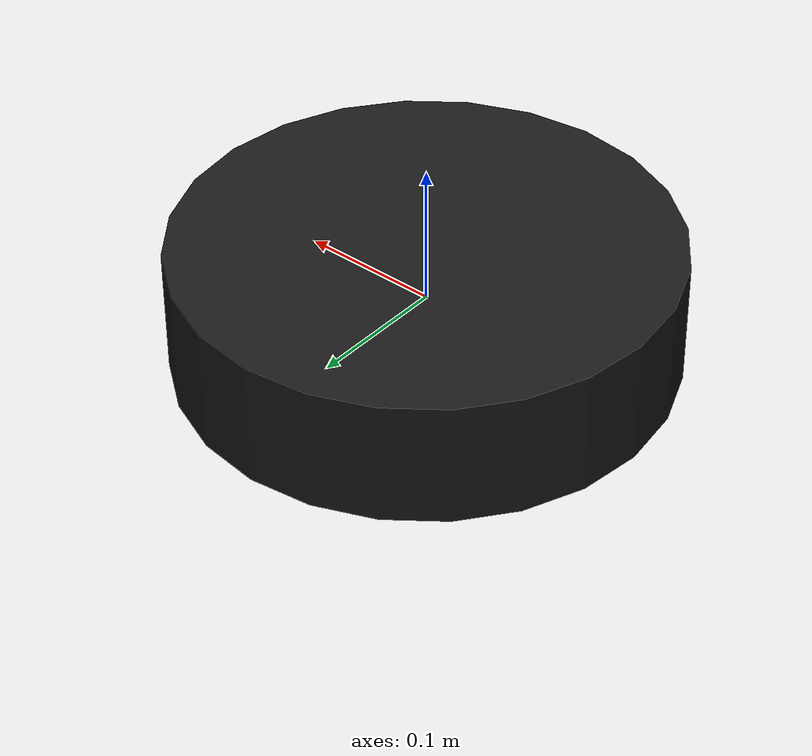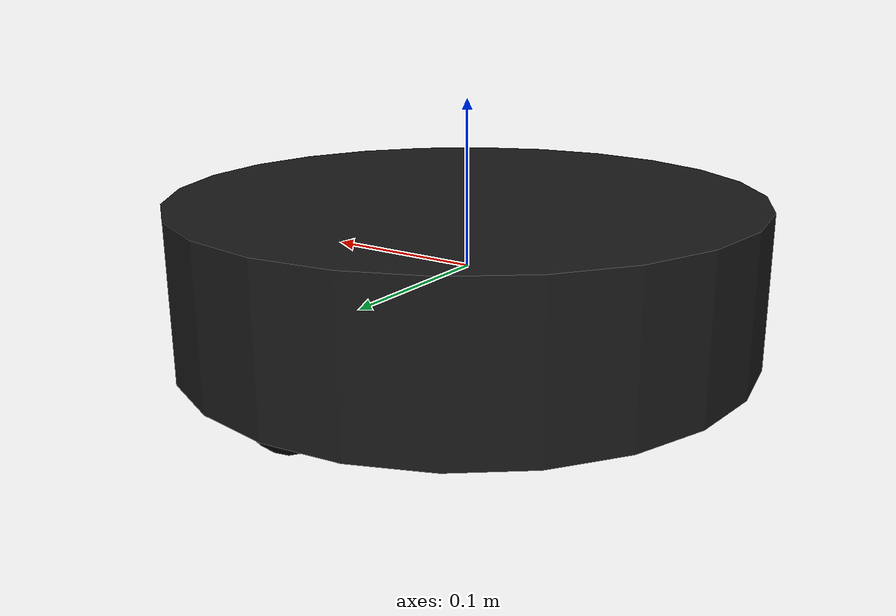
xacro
<?xml version="1.0"?>
<robot xmlns:xacro="http://www.ros.org/wiki/xacro" name="create_2">

	<xacro:property name="body_rad" value="0.17425"/>
	<xacro:property name="body_h" value="0.09"/>
	<xacro:property name="wheel_rad" value="0.036"/>
	<xacro:property name="wheel_h" value="0.02"/>
	<xacro:property name="b_mass" value="3.58"/>
	<xacro:property name="w_mass" value="0.2"/>

	<material name="black">
		<color rgba="0 0 0 1"/>
	</material>

	<material name="dark grey">
		<color rgba="0.1 0.1 0.1 1"/>
	</material>

	<link name="base_link">
		<visual>
			<geometry>
				<cylinder length="${body_h}" radius="${body_rad}"/>
			</geometry>
			<material name="dark grey"/>
		</visual>
		<collision>
			<geometry>
				<cylinder length="${body_h}" radius="${body_rad}"/>
			</geometry>
		</collision>
		<inertial>
			<mass value="${b_mass}"/>
			<inertia ixx="0.0296" ixy="0.0" ixz="0.0" iyy="0.0296" iyz="0.0" izz="0.054"/>
		</inertial>
	</link>

	<link name="right_wheel">
		<visual>
			<geometry>
				<cylinder length="${wheel_h}" radius="${wheel_rad}"/>
			</geometry>
			<origin rpy="1.57075 0 0" xyz="0 0 0"/>
			<material name="black"/>
		</visual>
		<collision>
			<geometry>
				<cylinder length="${wheel_h}" radius="${wheel_rad}"/>
			</geometry>
		</collision>
		<inertial>
			<mass value="${w_mass}"/>
			<inertia ixx="0.0000787" ixy="0.0" ixz="0.0" iyy="0.0000787" iyz="0.0" izz="0.000144"/>
		</inertial>
	</link>

	<joint name="base_to_right_wheel" type="continuous">
		<parent link="base_link"/>
		<child link="right_wheel"/>
		<axis xyz="0 1 0"/>
		<origin xyz="0 0.155 -0.018"/>
	</joint>

	<link name="left_wheel">
		<visual>
			<geometry>
				<cylinder length="${wheel_h}" radius="${wheel_rad}"/>
			</geometry>
			<origin rpy="1.57075 0 0" xyz="0 0 0"/>
			<material name="black"/>
		</visual>
		<collision>
			<geometry>
				<cylinder length="${wheel_h}" radius="${wheel_rad}"/>
			</geometry>
		</collision>
		<inertial>
			<mass value="${w_mass}"/>
			<inertia ixx="0.0000787" ixy="0.0" ixz="0.0" iyy="0.0000787" iyz="0.0" izz="0.000144"/>
		</inertial>
	</link>

	<joint name="base_to_left_wheel" type="continuous">
		<parent link="base_link"/>
		<child link="left_wheel"/>
		<origin xyz="0 -0.155 -0.018"/>
	</joint>

</robot>
